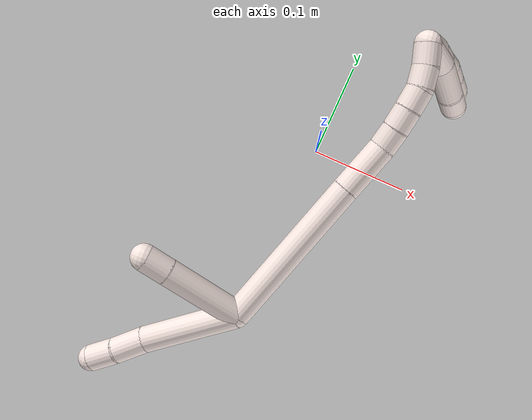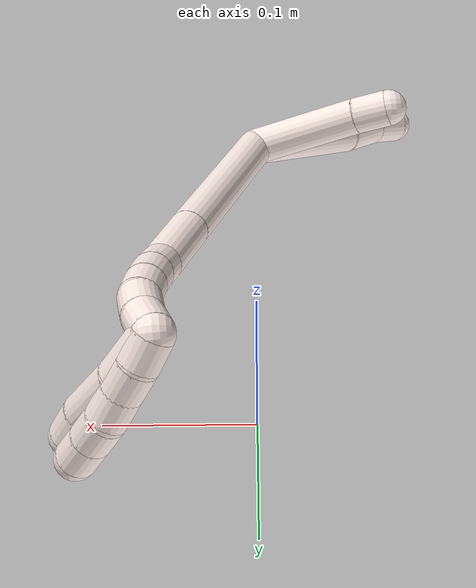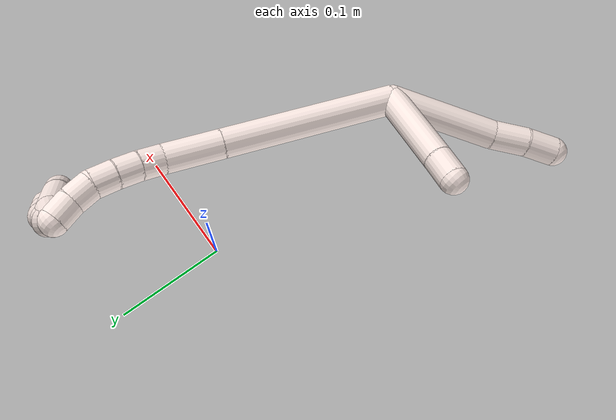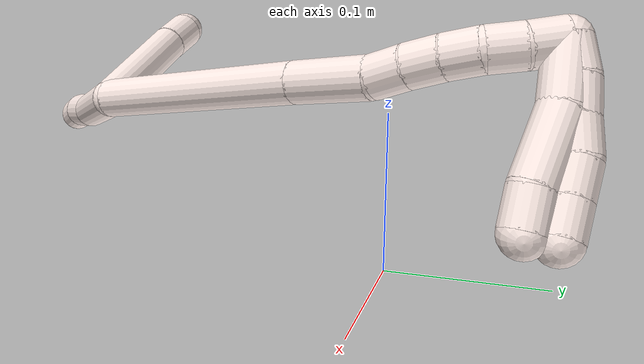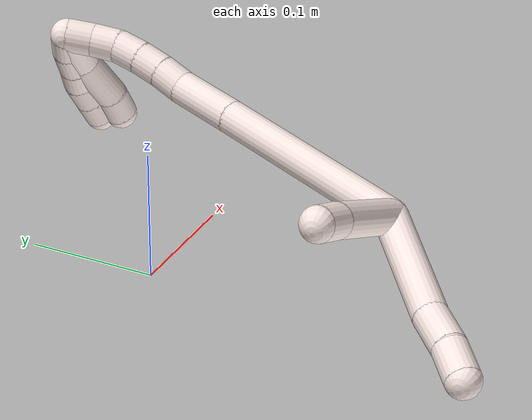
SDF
<sdf version="1.7">
 <world name="default">
  <model name="11">
   <static>0</static>
   <link name="11">
    <collision name="collision-cylinder-e_1_2_8">
     <pose>-0.006453 -0.027613 -0.036727 2.49691 -0.139522 -0.412472</pose>
     <geometry><cylinder><radius>0.0125</radius><length>0.092801</length></cylinder></geometry>
     <surface>
      <friction><ode><mu>1.16</mu><mu2>1.16</mu2><slip1>0</slip1><slip2>0</slip2></ode></friction>
      <contact><ode><kp>1e+06</kp><kd>1</kd><max_vel>0</max_vel><min_depth>0.001</min_depth></ode></contact>
     </surface>
    </collision>
    <visual name="visual-cylinder-e_1_2_8">
     <pose>-0.006453 -0.027613 -0.036727 2.49691 -0.139522 -0.412472</pose>
     <geometry><cylinder><radius>0.0125</radius><length>0.092801</length></cylinder></geometry>
     <material><ambient>1 0.933333 0.909804 1</ambient></material>
    </visual>
    <collision name="collision-cylinder-e_2_8_9">
     <pose>-0.016906 -0.064452 -0.085057 2.46982 -0.263604 -0.725825</pose>
     <geometry><cylinder><radius>0.0125</radius><length>0.030707</length></cylinder></geometry>
     <surface>
      <friction><ode><mu>1.16</mu><mu2>1.16</mu2><slip1>0</slip1><slip2>0</slip2></ode></friction>
      <contact><ode><kp>1e+06</kp><kd>1</kd><max_vel>0</max_vel><min_depth>0.001</min_depth></ode></contact>
     </surface>
    </collision>
    <visual name="visual-cylinder-e_2_8_9">
     <pose>-0.016906 -0.064452 -0.085057 2.46982 -0.263604 -0.725825</pose>
     <geometry><cylinder><radius>0.0125</radius><length>0.030707</length></cylinder></geometry>
     <material><ambient>1 0.933333 0.909804 1</ambient></material>
    </visual>
    <collision name="collision-cylinder-e_3_9_6">
     <pose>-0.022503 -0.082017 -0.106826 2.45466 -0.120769 -0.334928</pose>
     <geometry><cylinder><radius>0.0125</radius><length>0.026492</length></cylinder></geometry>
     <surface>
      <friction><ode><mu>1.16</mu><mu2>1.16</mu2><slip1>0</slip1><slip2>0</slip2></ode></friction>
      <contact><ode><kp>1e+06</kp><kd>1</kd><max_vel>0</max_vel><min_depth>0.001</min_depth></ode></contact>
     </surface>
    </collision>
    <visual name="visual-cylinder-e_3_9_6">
     <pose>-0.022503 -0.082017 -0.106826 2.45466 -0.120769 -0.334928</pose>
     <geometry><cylinder><radius>0.0125</radius><length>0.026492</length></cylinder></geometry>
     <material><ambient>1 0.933333 0.909804 1</ambient></material>
    </visual>
    <collision name="collision-cylinder-e_1_2_10">
     <pose>-0.005311 0.015207 -0.034613 -2.72764 -0.139566 0.642657</pose>
     <geometry><cylinder><radius>0.0125</radius><length>0.076355</length></cylinder></geometry>
     <surface>
      <friction><ode><mu>1.16</mu><mu2>1.16</mu2><slip1>0</slip1><slip2>0</slip2></ode></friction>
      <contact><ode><kp>1e+06</kp><kd>1</kd><max_vel>0</max_vel><min_depth>0.001</min_depth></ode></contact>
     </surface>
    </collision>
    <visual name="visual-cylinder-e_1_2_10">
     <pose>-0.005311 0.015207 -0.034613 -2.72764 -0.139566 0.642657</pose>
     <geometry><cylinder><radius>0.0125</radius><length>0.076355</length></cylinder></geometry>
     <material><ambient>1 0.933333 0.909804 1</ambient></material>
    </visual>
    <collision name="collision-cylinder-e_2_10_5">
     <pose>-0.011744 0.034756 -0.080165 -2.7637 -0.095086 0.48772</pose>
     <geometry><cylinder><radius>0.0125</radius><length>0.023645</length></cylinder></geometry>
     <surface>
      <friction><ode><mu>1.16</mu><mu2>1.16</mu2><slip1>0</slip1><slip2>0</slip2></ode></friction>
      <contact><ode><kp>1e+06</kp><kd>1</kd><max_vel>0</max_vel><min_depth>0.001</min_depth></ode></contact>
     </surface>
    </collision>
    <visual name="visual-cylinder-e_2_10_5">
     <pose>-0.011744 0.034756 -0.080165 -2.7637 -0.095086 0.48772</pose>
     <geometry><cylinder><radius>0.0125</radius><length>0.023645</length></cylinder></geometry>
     <material><ambient>1 0.933333 0.909804 1</ambient></material>
    </visual>
    <collision name="collision-cylinder-e_1_2_11">
     <pose>0.034508 0.060445 0.027704 -1.14102 0.478721 -0.310673</pose>
     <geometry><cylinder><radius>0.0125</radius><length>0.149825</length></cylinder></geometry>
     <surface>
      <friction><ode><mu>1.16</mu><mu2>1.16</mu2><slip1>0</slip1><slip2>0</slip2></ode></friction>
      <contact><ode><kp>1e+06</kp><kd>1</kd><max_vel>0</max_vel><min_depth>0.001</min_depth></ode></contact>
     </surface>
    </collision>
    <visual name="visual-cylinder-e_1_2_11">
     <pose>0.034508 0.060445 0.027704 -1.14102 0.478721 -0.310673</pose>
     <geometry><cylinder><radius>0.0125</radius><length>0.149825</length></cylinder></geometry>
     <material><ambient>1 0.933333 0.909804 1</ambient></material>
    </visual>
    <collision name="collision-cylinder-e_2_11_12">
     <pose>0.08068 0.140525 0.064694 -1.12908 0.492827 -0.315923</pose>
     <geometry><cylinder><radius>0.0125</radius><length>0.049308</length></cylinder></geometry>
     <surface>
      <friction><ode><mu>1.16</mu><mu2>1.16</mu2><slip1>0</slip1><slip2>0</slip2></ode></friction>
      <contact><ode><kp>1e+06</kp><kd>1</kd><max_vel>0</max_vel><min_depth>0.001</min_depth></ode></contact>
     </surface>
    </collision>
    <visual name="visual-cylinder-e_2_11_12">
     <pose>0.08068 0.140525 0.064694 -1.12908 0.492827 -0.315923</pose>
     <geometry><cylinder><radius>0.0125</radius><length>0.049308</length></cylinder></geometry>
     <material><ambient>1 0.933333 0.909804 1</ambient></material>
    </visual>
    <collision name="collision-cylinder-e_3_12_13">
     <pose>0.095548 0.169565 0.076674 -1.2918 0.316459 -0.239393</pose>
     <geometry><cylinder><radius>0.0125</radius><length>0.020589</length></cylinder></geometry>
     <surface>
      <friction><ode><mu>1.16</mu><mu2>1.16</mu2><slip1>0</slip1><slip2>0</slip2></ode></friction>
      <contact><ode><kp>1e+06</kp><kd>1</kd><max_vel>0</max_vel><min_depth>0.001</min_depth></ode></contact>
     </surface>
    </collision>
    <visual name="visual-cylinder-e_3_12_13">
     <pose>0.095548 0.169565 0.076674 -1.2918 0.316459 -0.239393</pose>
     <geometry><cylinder><radius>0.0125</radius><length>0.020589</length></cylinder></geometry>
     <material><ambient>1 0.933333 0.909804 1</ambient></material>
    </visual>
    <collision name="collision-cylinder-e_4_13_14">
     <pose>0.102495 0.188008 0.081502 -1.33894 0.383133 -0.304595</pose>
     <geometry><cylinder><radius>0.0125</radius><length>0.020026</length></cylinder></geometry>
     <surface>
      <friction><ode><mu>1.16</mu><mu2>1.16</mu2><slip1>0</slip1><slip2>0</slip2></ode></friction>
      <contact><ode><kp>1e+06</kp><kd>1</kd><max_vel>0</max_vel><min_depth>0.001</min_depth></ode></contact>
     </surface>
    </collision>
    <visual name="visual-cylinder-e_4_13_14">
     <pose>0.102495 0.188008 0.081502 -1.33894 0.383133 -0.304595</pose>
     <geometry><cylinder><radius>0.0125</radius><length>0.020026</length></cylinder></geometry>
     <material><ambient>1 0.933333 0.909804 1</ambient></material>
    </visual>
    <collision name="collision-cylinder-e_5_14_15">
     <pose>0.110641 0.205979 0.085451 -1.37029 0.449996 -0.369802</pose>
     <geometry><cylinder><radius>0.0125</radius><length>0.020245</length></cylinder></geometry>
     <surface>
      <friction><ode><mu>1.16</mu><mu2>1.16</mu2><slip1>0</slip1><slip2>0</slip2></ode></friction>
      <contact><ode><kp>1e+06</kp><kd>1</kd><max_vel>0</max_vel><min_depth>0.001</min_depth></ode></contact>
     </surface>
    </collision>
    <visual name="visual-cylinder-e_5_14_15">
     <pose>0.110641 0.205979 0.085451 -1.37029 0.449996 -0.369802</pose>
     <geometry><cylinder><radius>0.0125</radius><length>0.020245</length></cylinder></geometry>
     <material><ambient>1 0.933333 0.909804 1</ambient></material>
    </visual>
    <collision name="collision-cylinder-e_6_15_16">
     <pose>0.120533 0.22324 0.086516 -1.66067 0.580798 -0.632058</pose>
     <geometry><cylinder><radius>0.0125</radius><length>0.020007</length></cylinder></geometry>
     <surface>
      <friction><ode><mu>1.16</mu><mu2>1.16</mu2><slip1>0</slip1><slip2>0</slip2></ode></friction>
      <contact><ode><kp>1e+06</kp><kd>1</kd><max_vel>0</max_vel><min_depth>0.001</min_depth></ode></contact>
     </surface>
    </collision>
    <visual name="visual-cylinder-e_6_15_16">
     <pose>0.120533 0.22324 0.086516 -1.66067 0.580798 -0.632058</pose>
     <geometry><cylinder><radius>0.0125</radius><length>0.020007</length></cylinder></geometry>
     <material><ambient>1 0.933333 0.909804 1</ambient></material>
    </visual>
    <collision name="collision-cylinder-e_7_16_1">
     <pose>0.131215 0.239794 0.083442 -1.84615 0.546108 -0.708994</pose>
     <geometry><cylinder><radius>0.0125</radius><length>0.02</length></cylinder></geometry>
     <surface>
      <friction><ode><mu>1.16</mu><mu2>1.16</mu2><slip1>0</slip1><slip2>0</slip2></ode></friction>
      <contact><ode><kp>1e+06</kp><kd>1</kd><max_vel>0</max_vel><min_depth>0.001</min_depth></ode></contact>
     </surface>
    </collision>
    <visual name="visual-cylinder-e_7_16_1">
     <pose>0.131215 0.239794 0.083442 -1.84615 0.546108 -0.708994</pose>
     <geometry><cylinder><radius>0.0125</radius><length>0.02</length></cylinder></geometry>
     <material><ambient>1 0.933333 0.909804 1</ambient></material>
    </visual>
    <collision name="collision-cylinder-e_1_1_17">
     <pose>0.14417 0.243988 0.085969 0.693176 0.888455 0.340471</pose>
     <geometry><cylinder><radius>0.0125</radius><length>0.02</length></cylinder></geometry>
     <surface>
      <friction><ode><mu>1.16</mu><mu2>1.16</mu2><slip1>0</slip1><slip2>0</slip2></ode></friction>
      <contact><ode><kp>1e+06</kp><kd>1</kd><max_vel>0</max_vel><min_depth>0.001</min_depth></ode></contact>
     </surface>
    </collision>
    <visual name="visual-cylinder-e_1_1_17">
     <pose>0.14417 0.243988 0.085969 0.693176 0.888455 0.340471</pose>
     <geometry><cylinder><radius>0.0125</radius><length>0.02</length></cylinder></geometry>
     <material><ambient>1 0.933333 0.909804 1</ambient></material>
    </visual>
    <collision name="collision-cylinder-e_2_17_18">
     <pose>0.15853 0.234325 0.095793 0.847595 0.720608 0.336712</pose>
     <geometry><cylinder><radius>0.0125</radius><length>0.02</length></cylinder></geometry>
     <surface>
      <friction><ode><mu>1.16</mu><mu2>1.16</mu2><slip1>0</slip1><slip2>0</slip2></ode></friction>
      <contact><ode><kp>1e+06</kp><kd>1</kd><max_vel>0</max_vel><min_depth>0.001</min_depth></ode></contact>
     </surface>
    </collision>
    <visual name="visual-cylinder-e_2_17_18">
     <pose>0.15853 0.234325 0.095793 0.847595 0.720608 0.336712</pose>
     <geometry><cylinder><radius>0.0125</radius><length>0.02</length></cylinder></geometry>
     <material><ambient>1 0.933333 0.909804 1</ambient></material>
    </visual>
    <collision name="collision-cylinder-e_3_18_19">
     <pose>0.172143 0.223639 0.105792 0.78807 0.777451 0.337342</pose>
     <geometry><cylinder><radius>0.0125</radius><length>0.02</length></cylinder></geometry>
     <surface>
      <friction><ode><mu>1.16</mu><mu2>1.16</mu2><slip1>0</slip1><slip2>0</slip2></ode></friction>
      <contact><ode><kp>1e+06</kp><kd>1</kd><max_vel>0</max_vel><min_depth>0.001</min_depth></ode></contact>
     </surface>
    </collision>
    <visual name="visual-cylinder-e_3_18_19">
     <pose>0.172143 0.223639 0.105792 0.78807 0.777451 0.337342</pose>
     <geometry><cylinder><radius>0.0125</radius><length>0.02</length></cylinder></geometry>
     <material><ambient>1 0.933333 0.909804 1</ambient></material>
    </visual>
    <collision name="collision-cylinder-e_4_19_20">
     <pose>0.184387 0.211659 0.115785 0.948621 0.550293 0.287868</pose>
     <geometry><cylinder><radius>0.0125</radius><length>0.02</length></cylinder></geometry>
     <surface>
      <friction><ode><mu>1.16</mu><mu2>1.16</mu2><slip1>0</slip1><slip2>0</slip2></ode></friction>
      <contact><ode><kp>1e+06</kp><kd>1</kd><max_vel>0</max_vel><min_depth>0.001</min_depth></ode></contact>
     </surface>
    </collision>
    <visual name="visual-cylinder-e_4_19_20">
     <pose>0.184387 0.211659 0.115785 0.948621 0.550293 0.287868</pose>
     <geometry><cylinder><radius>0.0125</radius><length>0.02</length></cylinder></geometry>
     <material><ambient>1 0.933333 0.909804 1</ambient></material>
    </visual>
    <collision name="collision-cylinder-e_5_20_4">
     <pose>0.194864 0.197865 0.125781 0.938829 0.552465 0.285621</pose>
     <geometry><cylinder><radius>0.0125</radius><length>0.02</length></cylinder></geometry>
     <surface>
      <friction><ode><mu>1.16</mu><mu2>1.16</mu2><slip1>0</slip1><slip2>0</slip2></ode></friction>
      <contact><ode><kp>1e+06</kp><kd>1</kd><max_vel>0</max_vel><min_depth>0.001</min_depth></ode></contact>
     </surface>
    </collision>
    <visual name="visual-cylinder-e_5_20_4">
     <pose>0.194864 0.197865 0.125781 0.938829 0.552465 0.285621</pose>
     <geometry><cylinder><radius>0.0125</radius><length>0.02</length></cylinder></geometry>
     <material><ambient>1 0.933333 0.909804 1</ambient></material>
    </visual>
    <collision name="collision-cylinder-e_1_1_21">
     <pose>0.146981 0.237371 0.091366 0.804496 0.620993 0.271352</pose>
     <geometry><cylinder><radius>0.0125</radius><length>0.036338</length></cylinder></geometry>
     <surface>
      <friction><ode><mu>1.16</mu><mu2>1.16</mu2><slip1>0</slip1><slip2>0</slip2></ode></friction>
      <contact><ode><kp>1e+06</kp><kd>1</kd><max_vel>0</max_vel><min_depth>0.001</min_depth></ode></contact>
     </surface>
    </collision>
    <visual name="visual-cylinder-e_1_1_21">
     <pose>0.146981 0.237371 0.091366 0.804496 0.620993 0.271352</pose>
     <geometry><cylinder><radius>0.0125</radius><length>0.036338</length></cylinder></geometry>
     <material><ambient>1 0.933333 0.909804 1</ambient></material>
    </visual>
    <collision name="collision-cylinder-e_2_21_22">
     <pose>0.166315 0.211215 0.112639 0.952779 0.431571 0.225269</pose>
     <geometry><cylinder><radius>0.0125</radius><length>0.041901</length></cylinder></geometry>
     <surface>
      <friction><ode><mu>1.16</mu><mu2>1.16</mu2><slip1>0</slip1><slip2>0</slip2></ode></friction>
      <contact><ode><kp>1e+06</kp><kd>1</kd><max_vel>0</max_vel><min_depth>0.001</min_depth></ode></contact>
     </surface>
    </collision>
    <visual name="visual-cylinder-e_2_21_22">
     <pose>0.166315 0.211215 0.112639 0.952779 0.431571 0.225269</pose>
     <geometry><cylinder><radius>0.0125</radius><length>0.041901</length></cylinder></geometry>
     <material><ambient>1 0.933333 0.909804 1</ambient></material>
    </visual>
    <collision name="collision-cylinder-e_3_22_3">
     <pose>0.181222 0.18823 0.128642 0.983424 0.599912 0.328321</pose>
     <geometry><cylinder><radius>0.0125</radius><length>0.021762</length></cylinder></geometry>
     <surface>
      <friction><ode><mu>1.16</mu><mu2>1.16</mu2><slip1>0</slip1><slip2>0</slip2></ode></friction>
      <contact><ode><kp>1e+06</kp><kd>1</kd><max_vel>0</max_vel><min_depth>0.001</min_depth></ode></contact>
     </surface>
    </collision>
    <visual name="visual-cylinder-e_3_22_3">
     <pose>0.181222 0.18823 0.128642 0.983424 0.599912 0.328321</pose>
     <geometry><cylinder><radius>0.0125</radius><length>0.021762</length></cylinder></geometry>
     <material><ambient>1 0.933333 0.909804 1</ambient></material>
    </visual>
    <collision name="collision-sphere-3">
     <pose>0.187365 0.180754 0.133619 0 -0 0</pose>
     <geometry><sphere><radius>0.0125</radius></sphere></geometry>
     <surface>
      <friction><ode><mu>1.16</mu><mu2>1.16</mu2><slip1>0</slip1><slip2>0</slip2></ode></friction>
      <contact><ode><kp>1e+06</kp><kd>1</kd><max_vel>0</max_vel><min_depth>0.001</min_depth></ode></contact>
     </surface>
    </collision>
    <visual name="visual-sphere-3">
     <pose>0.187365 0.180754 0.133619 0 -0 0</pose>
     <geometry><sphere><radius>0.0125</radius></sphere></geometry>
     <material><ambient>1 0.933333 0.909804 1</ambient></material>
    </visual>
    <collision name="collision-sphere-22">
     <pose>0.175079 0.195706 0.123665 0 -0 0</pose>
     <geometry><sphere><radius>0.0125</radius></sphere></geometry>
     <surface>
      <friction><ode><mu>1.16</mu><mu2>1.16</mu2><slip1>0</slip1><slip2>0</slip2></ode></friction>
      <contact><ode><kp>1e+06</kp><kd>1</kd><max_vel>0</max_vel><min_depth>0.001</min_depth></ode></contact>
     </surface>
    </collision>
    <visual name="visual-sphere-22">
     <pose>0.175079 0.195706 0.123665 0 -0 0</pose>
     <geometry><sphere><radius>0.0125</radius></sphere></geometry>
     <material><ambient>1 0.933333 0.909804 1</ambient></material>
    </visual>
    <collision name="collision-sphere-21">
     <pose>0.157552 0.226725 0.101613 0 -0 0</pose>
     <geometry><sphere><radius>0.0125</radius></sphere></geometry>
     <surface>
      <friction><ode><mu>1.16</mu><mu2>1.16</mu2><slip1>0</slip1><slip2>0</slip2></ode></friction>
      <contact><ode><kp>1e+06</kp><kd>1</kd><max_vel>0</max_vel><min_depth>0.001</min_depth></ode></contact>
     </surface>
    </collision>
    <visual name="visual-sphere-21">
     <pose>0.157552 0.226725 0.101613 0 -0 0</pose>
     <geometry><sphere><radius>0.0125</radius></sphere></geometry>
     <material><ambient>1 0.933333 0.909804 1</ambient></material>
    </visual>
    <collision name="collision-sphere-4">
     <pose>0.200112 0.190996 0.13081 0 -0 0</pose>
     <geometry><sphere><radius>0.0125</radius></sphere></geometry>
     <surface>
      <friction><ode><mu>1.16</mu><mu2>1.16</mu2><slip1>0</slip1><slip2>0</slip2></ode></friction>
      <contact><ode><kp>1e+06</kp><kd>1</kd><max_vel>0</max_vel><min_depth>0.001</min_depth></ode></contact>
     </surface>
    </collision>
    <visual name="visual-sphere-4">
     <pose>0.200112 0.190996 0.13081 0 -0 0</pose>
     <geometry><sphere><radius>0.0125</radius></sphere></geometry>
     <material><ambient>1 0.933333 0.909804 1</ambient></material>
    </visual>
    <collision name="collision-sphere-20">
     <pose>0.189616 0.204733 0.120753 0 -0 0</pose>
     <geometry><sphere><radius>0.0125</radius></sphere></geometry>
     <surface>
      <friction><ode><mu>1.16</mu><mu2>1.16</mu2><slip1>0</slip1><slip2>0</slip2></ode></friction>
      <contact><ode><kp>1e+06</kp><kd>1</kd><max_vel>0</max_vel><min_depth>0.001</min_depth></ode></contact>
     </surface>
    </collision>
    <visual name="visual-sphere-20">
     <pose>0.189616 0.204733 0.120753 0 -0 0</pose>
     <geometry><sphere><radius>0.0125</radius></sphere></geometry>
     <material><ambient>1 0.933333 0.909804 1</ambient></material>
    </visual>
    <collision name="collision-sphere-5">
     <pose>-0.012867 0.039098 -0.091104 0 -0 0</pose>
     <geometry><sphere><radius>0.0125</radius></sphere></geometry>
     <surface>
      <friction><ode><mu>1.16</mu><mu2>1.16</mu2><slip1>0</slip1><slip2>0</slip2></ode></friction>
      <contact><ode><kp>1e+06</kp><kd>1</kd><max_vel>0</max_vel><min_depth>0.001</min_depth></ode></contact>
     </surface>
    </collision>
    <visual name="visual-sphere-5">
     <pose>-0.012867 0.039098 -0.091104 0 -0 0</pose>
     <geometry><sphere><radius>0.0125</radius></sphere></geometry>
     <material><ambient>1 0.933333 0.909804 1</ambient></material>
    </visual>
    <collision name="collision-sphere-10">
     <pose>-0.010622 0.030414 -0.069226 0 -0 0</pose>
     <geometry><sphere><radius>0.0125</radius></sphere></geometry>
     <surface>
      <friction><ode><mu>1.16</mu><mu2>1.16</mu2><slip1>0</slip1><slip2>0</slip2></ode></friction>
      <contact><ode><kp>1e+06</kp><kd>1</kd><max_vel>0</max_vel><min_depth>0.001</min_depth></ode></contact>
     </surface>
    </collision>
    <visual name="visual-sphere-10">
     <pose>-0.010622 0.030414 -0.069226 0 -0 0</pose>
     <geometry><sphere><radius>0.0125</radius></sphere></geometry>
     <material><ambient>1 0.933333 0.909804 1</ambient></material>
    </visual>
    <collision name="collision-sphere-6">
     <pose>-0.024099 -0.090356 -0.116993 0 -0 0</pose>
     <geometry><sphere><radius>0.0125</radius></sphere></geometry>
     <surface>
      <friction><ode><mu>1.16</mu><mu2>1.16</mu2><slip1>0</slip1><slip2>0</slip2></ode></friction>
      <contact><ode><kp>1e+06</kp><kd>1</kd><max_vel>0</max_vel><min_depth>0.001</min_depth></ode></contact>
     </surface>
    </collision>
    <visual name="visual-sphere-6">
     <pose>-0.024099 -0.090356 -0.116993 0 -0 0</pose>
     <geometry><sphere><radius>0.0125</radius></sphere></geometry>
     <material><ambient>1 0.933333 0.909804 1</ambient></material>
    </visual>
    <collision name="collision-sphere-9">
     <pose>-0.020907 -0.073678 -0.096659 0 -0 0</pose>
     <geometry><sphere><radius>0.0125</radius></sphere></geometry>
     <surface>
      <friction><ode><mu>1.16</mu><mu2>1.16</mu2><slip1>0</slip1><slip2>0</slip2></ode></friction>
      <contact><ode><kp>1e+06</kp><kd>1</kd><max_vel>0</max_vel><min_depth>0.001</min_depth></ode></contact>
     </surface>
    </collision>
    <visual name="visual-sphere-9">
     <pose>-0.020907 -0.073678 -0.096659 0 -0 0</pose>
     <geometry><sphere><radius>0.0125</radius></sphere></geometry>
     <material><ambient>1 0.933333 0.909804 1</ambient></material>
    </visual>
    <collision name="collision-sphere-2">
     <geometry><sphere><radius>0.0125</radius></sphere></geometry>
     <surface>
      <friction><ode><mu>1.16</mu><mu2>1.16</mu2><slip1>0</slip1><slip2>0</slip2></ode></friction>
      <contact><ode><kp>1e+06</kp><kd>1</kd><max_vel>0</max_vel><min_depth>0.001</min_depth></ode></contact>
     </surface>
    </collision>
    <visual name="visual-sphere-2">
     <geometry><sphere><radius>0.0125</radius></sphere></geometry>
     <material><ambient>1 0.933333 0.909804 1</ambient></material>
    </visual>
    <collision name="collision-sphere-19">
     <pose>0.179157 0.218586 0.110818 0 -0 0</pose>
     <geometry><sphere><radius>0.0125</radius></sphere></geometry>
     <surface>
      <friction><ode><mu>1.16</mu><mu2>1.16</mu2><slip1>0</slip1><slip2>0</slip2></ode></friction>
      <contact><ode><kp>1e+06</kp><kd>1</kd><max_vel>0</max_vel><min_depth>0.001</min_depth></ode></contact>
     </surface>
    </collision>
    <visual name="visual-sphere-19">
     <pose>0.179157 0.218586 0.110818 0 -0 0</pose>
     <geometry><sphere><radius>0.0125</radius></sphere></geometry>
     <material><ambient>1 0.933333 0.909804 1</ambient></material>
    </visual>
    <collision name="collision-sphere-8">
     <pose>-0.012906 -0.055227 -0.073454 0 -0 0</pose>
     <geometry><sphere><radius>0.0125</radius></sphere></geometry>
     <surface>
      <friction><ode><mu>1.16</mu><mu2>1.16</mu2><slip1>0</slip1><slip2>0</slip2></ode></friction>
      <contact><ode><kp>1e+06</kp><kd>1</kd><max_vel>0</max_vel><min_depth>0.001</min_depth></ode></contact>
     </surface>
    </collision>
    <visual name="visual-sphere-8">
     <pose>-0.012906 -0.055227 -0.073454 0 -0 0</pose>
     <geometry><sphere><radius>0.0125</radius></sphere></geometry>
     <material><ambient>1 0.933333 0.909804 1</ambient></material>
    </visual>
    <collision name="collision-sphere-11">
     <pose>0.069016 0.120889 0.055409 0 -0 0</pose>
     <geometry><sphere><radius>0.0125</radius></sphere></geometry>
     <surface>
      <friction><ode><mu>1.16</mu><mu2>1.16</mu2><slip1>0</slip1><slip2>0</slip2></ode></friction>
      <contact><ode><kp>1e+06</kp><kd>1</kd><max_vel>0</max_vel><min_depth>0.001</min_depth></ode></contact>
     </surface>
    </collision>
    <visual name="visual-sphere-11">
     <pose>0.069016 0.120889 0.055409 0 -0 0</pose>
     <geometry><sphere><radius>0.0125</radius></sphere></geometry>
     <material><ambient>1 0.933333 0.909804 1</ambient></material>
    </visual>
    <collision name="collision-sphere-12">
     <pose>0.092345 0.16016 0.073979 0 -0 0</pose>
     <geometry><sphere><radius>0.0125</radius></sphere></geometry>
     <surface>
      <friction><ode><mu>1.16</mu><mu2>1.16</mu2><slip1>0</slip1><slip2>0</slip2></ode></friction>
      <contact><ode><kp>1e+06</kp><kd>1</kd><max_vel>0</max_vel><min_depth>0.001</min_depth></ode></contact>
     </surface>
    </collision>
    <visual name="visual-sphere-12">
     <pose>0.092345 0.16016 0.073979 0 -0 0</pose>
     <geometry><sphere><radius>0.0125</radius></sphere></geometry>
     <material><ambient>1 0.933333 0.909804 1</ambient></material>
    </visual>
    <collision name="collision-sphere-13">
     <pose>0.098752 0.17897 0.079368 0 -0 0</pose>
     <geometry><sphere><radius>0.0125</radius></sphere></geometry>
     <surface>
      <friction><ode><mu>1.16</mu><mu2>1.16</mu2><slip1>0</slip1><slip2>0</slip2></ode></friction>
      <contact><ode><kp>1e+06</kp><kd>1</kd><max_vel>0</max_vel><min_depth>0.001</min_depth></ode></contact>
     </surface>
    </collision>
    <visual name="visual-sphere-13">
     <pose>0.098752 0.17897 0.079368 0 -0 0</pose>
     <geometry><sphere><radius>0.0125</radius></sphere></geometry>
     <material><ambient>1 0.933333 0.909804 1</ambient></material>
    </visual>
    <collision name="collision-sphere-14">
     <pose>0.106238 0.197046 0.083636 0 -0 0</pose>
     <geometry><sphere><radius>0.0125</radius></sphere></geometry>
     <surface>
      <friction><ode><mu>1.16</mu><mu2>1.16</mu2><slip1>0</slip1><slip2>0</slip2></ode></friction>
      <contact><ode><kp>1e+06</kp><kd>1</kd><max_vel>0</max_vel><min_depth>0.001</min_depth></ode></contact>
     </surface>
    </collision>
    <visual name="visual-sphere-14">
     <pose>0.106238 0.197046 0.083636 0 -0 0</pose>
     <geometry><sphere><radius>0.0125</radius></sphere></geometry>
     <material><ambient>1 0.933333 0.909804 1</ambient></material>
    </visual>
    <collision name="collision-sphere-15">
     <pose>0.115044 0.214911 0.087266 0 -0 0</pose>
     <geometry><sphere><radius>0.0125</radius></sphere></geometry>
     <surface>
      <friction><ode><mu>1.16</mu><mu2>1.16</mu2><slip1>0</slip1><slip2>0</slip2></ode></friction>
      <contact><ode><kp>1e+06</kp><kd>1</kd><max_vel>0</max_vel><min_depth>0.001</min_depth></ode></contact>
     </surface>
    </collision>
    <visual name="visual-sphere-15">
     <pose>0.115044 0.214911 0.087266 0 -0 0</pose>
     <geometry><sphere><radius>0.0125</radius></sphere></geometry>
     <material><ambient>1 0.933333 0.909804 1</ambient></material>
    </visual>
    <collision name="collision-sphere-16">
     <pose>0.126022 0.23157 0.085765 0 -0 0</pose>
     <geometry><sphere><radius>0.0125</radius></sphere></geometry>
     <surface>
      <friction><ode><mu>1.16</mu><mu2>1.16</mu2><slip1>0</slip1><slip2>0</slip2></ode></friction>
      <contact><ode><kp>1e+06</kp><kd>1</kd><max_vel>0</max_vel><min_depth>0.001</min_depth></ode></contact>
     </surface>
    </collision>
    <visual name="visual-sphere-16">
     <pose>0.126022 0.23157 0.085765 0 -0 0</pose>
     <geometry><sphere><radius>0.0125</radius></sphere></geometry>
     <material><ambient>1 0.933333 0.909804 1</ambient></material>
    </visual>
    <collision name="collision-sphere-1">
     <pose>0.136409 0.248017 0.081118 0 -0 0</pose>
     <geometry><sphere><radius>0.0125</radius></sphere></geometry>
     <surface>
      <friction><ode><mu>1.16</mu><mu2>1.16</mu2><slip1>0</slip1><slip2>0</slip2></ode></friction>
      <contact><ode><kp>1e+06</kp><kd>1</kd><max_vel>0</max_vel><min_depth>0.001</min_depth></ode></contact>
     </surface>
    </collision>
    <visual name="visual-sphere-1">
     <pose>0.136409 0.248017 0.081118 0 -0 0</pose>
     <geometry><sphere><radius>0.0125</radius></sphere></geometry>
     <material><ambient>1 0.933333 0.909804 1</ambient></material>
    </visual>
    <collision name="collision-sphere-18">
     <pose>0.165128 0.228692 0.100765 0 -0 0</pose>
     <geometry><sphere><radius>0.0125</radius></sphere></geometry>
     <surface>
      <friction><ode><mu>1.16</mu><mu2>1.16</mu2><slip1>0</slip1><slip2>0</slip2></ode></friction>
      <contact><ode><kp>1e+06</kp><kd>1</kd><max_vel>0</max_vel><min_depth>0.001</min_depth></ode></contact>
     </surface>
    </collision>
    <visual name="visual-sphere-18">
     <pose>0.165128 0.228692 0.100765 0 -0 0</pose>
     <geometry><sphere><radius>0.0125</radius></sphere></geometry>
     <material><ambient>1 0.933333 0.909804 1</ambient></material>
    </visual>
    <collision name="collision-sphere-17">
     <pose>0.151931 0.239958 0.09082 0 -0 0</pose>
     <geometry><sphere><radius>0.0125</radius></sphere></geometry>
     <surface>
      <friction><ode><mu>1.16</mu><mu2>1.16</mu2><slip1>0</slip1><slip2>0</slip2></ode></friction>
      <contact><ode><kp>1e+06</kp><kd>1</kd><max_vel>0</max_vel><min_depth>0.001</min_depth></ode></contact>
     </surface>
    </collision>
    <visual name="visual-sphere-17">
     <pose>0.151931 0.239958 0.09082 0 -0 0</pose>
     <geometry><sphere><radius>0.0125</radius></sphere></geometry>
     <material><ambient>1 0.933333 0.909804 1</ambient></material>
    </visual>
    <inertial>
     <pose>0.068509 0.100991 0.031619 0 -0 0</pose>
     <mass>0.75</mass>
     <inertia>
      <ixx>0.000309</ixx>
      <ixy>0</ixy>
      <ixz>0</ixz>
      <iyy>1.3e-05</iyy>
      <iyz>0</iyz>
      <izz>-0.000341</izz>
     </inertia>
    </inertial>
   </link>
   <pose>-0.001141 -0.186957 0.098946 1.61958 0.869694 1.7021</pose>
  </model>
 </world>
</sdf>
